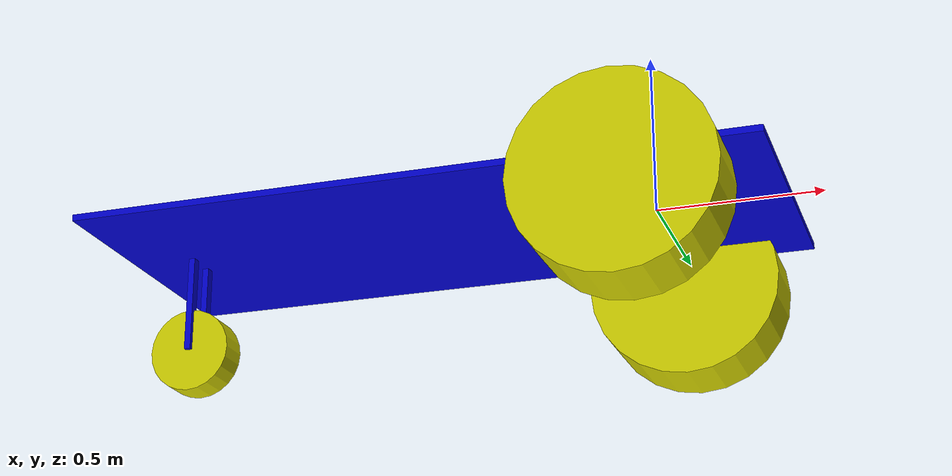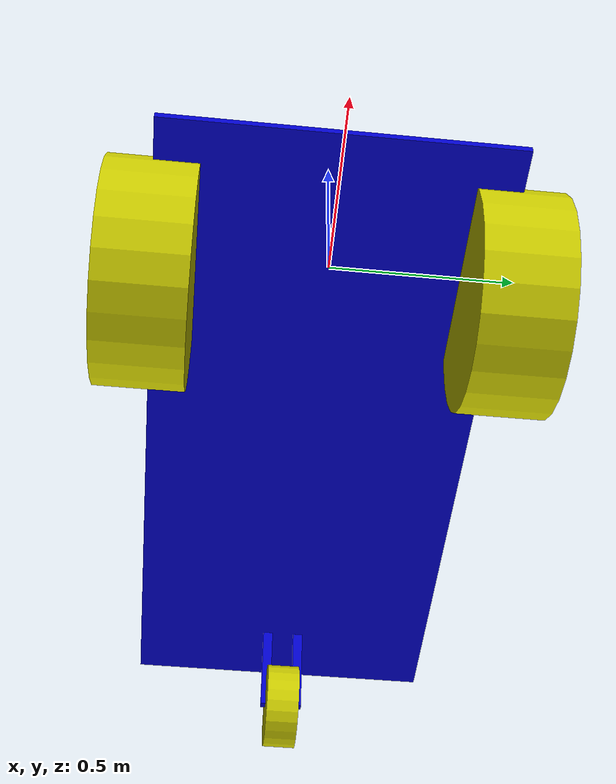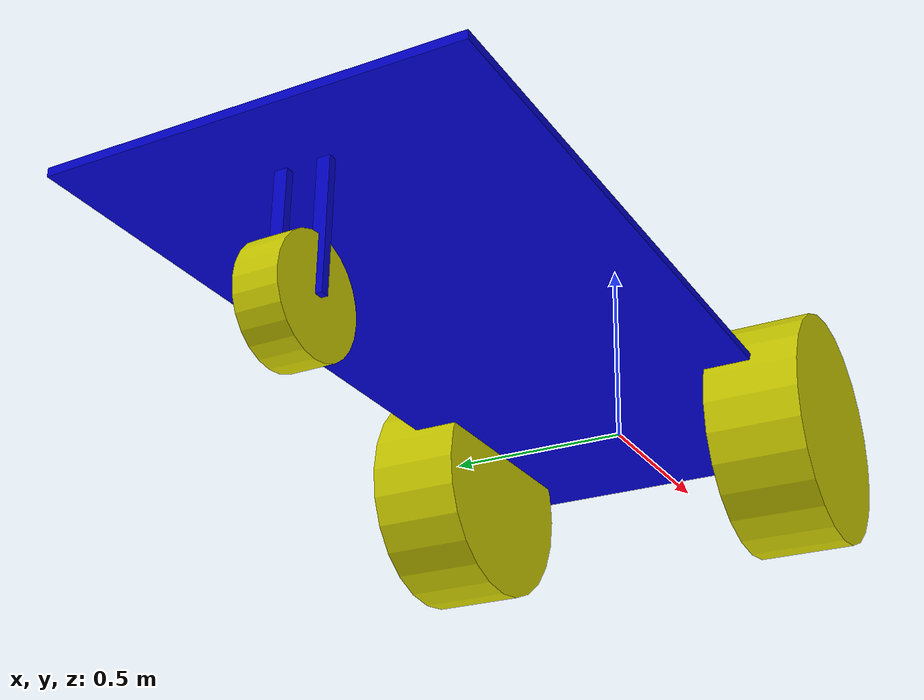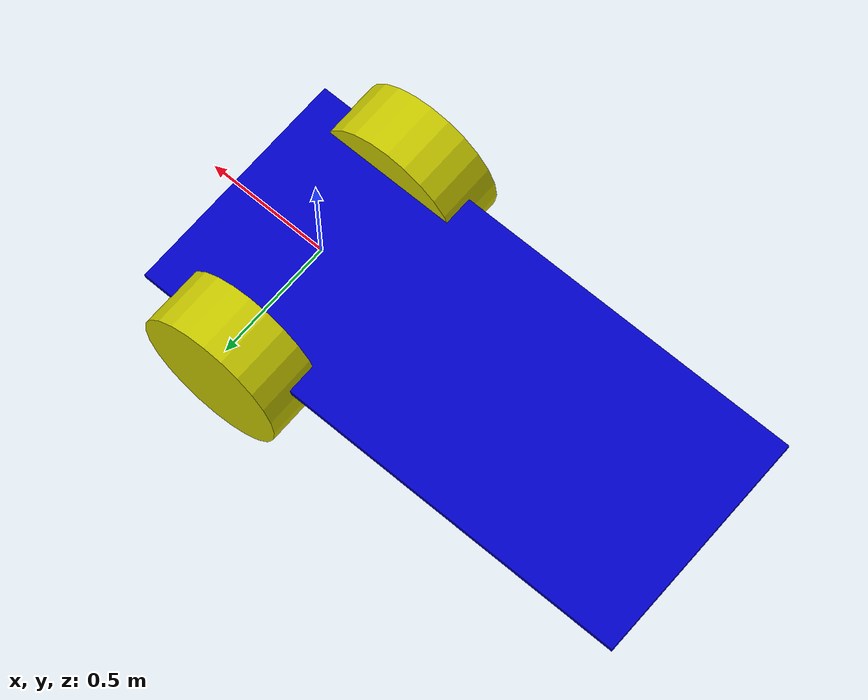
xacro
<?xml version="1.0"?>
<robot xmlns:xacro="http://www.ros.org/wiki/xacro"  name="batmobil">

    <xacro:arg name="use_ros2_control" default="true"/>
    <xacro:arg name="sim_mode" default="false"/>

    <xacro:include filename="core_model.xacro" />

    <xacro:if value="$(arg use_ros2_control)">
        <xacro:include filename="ros2_control.xacro" />
    </xacro:if>
    <xacro:unless value="$(arg use_ros2_control)">
        <xacro:include filename="gz_control.xacro" />
    </xacro:unless>

</robot>

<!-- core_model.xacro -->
<robot xmlns:xacro="http://www.ros.org/wiki/xacro" name="batmobil">

  <!-- Material Color -->
  <material name="blue">
    <color rgba="0 0 0.8 1"/>
  </material>

  <material name="yellow">
    <color rgba="0.8 0.8 0.0 1.0"/>
  </material>

  <material name="white">
    <color rgba="1 1 1 1"/>
  </material>

  <!-- Base Link -->
  <link name="base_link">
    <inertial>
      <origin xyz="0 0 0" rpy="0 0 0"/>
      <mass value="1.0"/>
      <inertia ixx="0.03" ixy="0.0" ixz="0.0" iyy="0.03" iyz="0.0" izz="0.03"/>
    </inertial>
  </link>

  <!-- Chassis link-->
  <link name="chassis">
    <visual>
      <origin xyz="0.35 0 0.01"/>
      <geometry>
        <box size="2.1 0.95 0.02"/>
      </geometry>
      <material name="blue"/>
    </visual>
    <collision>
      <origin xyz="0.35 0 0.01"/>
      <geometry>
        <box size="2.1 0.95 0.02"/>
      </geometry>
    </collision>
    <inertial>
      <origin xyz="0.35 0 0.01"/>
      <mass value="10.0"/>
      <inertia ixx="1.0" ixy="0.0" ixz="0.0" iyy="1.0" iyz="0.0" izz="1.0"/>
    </inertial>
  </link>

  <!-- Joint chassis-->
  <joint name="chassis_joint" type="fixed">
    <parent link="base_link"/>
    <child link="chassis"/>
    <origin xyz="-1 0 0"/>
  </joint>

  <!-- Right Wheel Link -->
  <link name="right_wheel">
    <visual>
      <geometry>
        <cylinder length="0.24" radius="0.3"/>
      </geometry>
      <material name="yellow"/>
    </visual>
    <collision>
      <geometry>
        <cylinder length="0.24" radius="0.3"/>
      </geometry>
    </collision>
    <inertial>
      <origin xyz="0 0 0"/>
      <mass value="1.0"/>
      <inertia ixx="0.02" ixy="0.0" ixz="0.0" iyy="0.02" iyz="0.0" izz="0.02"/>
    </inertial>
  </link>

  <!-- Joint between base_link and right wheel -->
  <joint name="base_to_right_wheel" type="continuous">
    <parent link="base_link"/>
    <child link="right_wheel"/>
    <origin xyz="0 -0.475 -0.1" rpy="1.5708 0 0"/>
    <axis xyz="0 0 -1"/>
    <dynamics damping="0.1" friction="0.1"/>
  </joint>

  <!-- Left Wheel Link -->
  <link name="left_wheel">
    <visual>
      <geometry>
        <cylinder length="0.24" radius="0.3"/>
      </geometry>
      <material name="yellow"/>
    </visual>
    <collision>
      <geometry>
        <cylinder length="0.24" radius="0.3"/>
      </geometry>
    </collision>
    <inertial>
      <origin xyz="0 0 0"/>
      <mass value="1.0"/>
      <inertia ixx="0.02" ixy="0.0" ixz="0.0" iyy="0.02" iyz="0.0" izz="0.02"/>
    </inertial>
  </link>

  <!-- Joint between base_link and left wheel -->
  <joint name="base_to_left_wheel" type="continuous">
    <parent link="base_link"/>
    <child link="left_wheel"/>
    <origin xyz="0 0.475 -0.1" rpy="-1.5708 0 0"/>
    <axis xyz="0 0 1"/>
    <dynamics damping="0.1" friction="0.1"/>
  </joint>

  <!-- Arm links -->
  <!-- link front wheel arm left -->
  <link name="wheel_arm_left">
    <visual>
      <geometry>
        <box size="0.02 0.03 0.3"/>
      </geometry>
      <material name="blue"/>
    </visual>
    <collision>
      <geometry>
        <box size="0.02 0.03 0.3"/>
      </geometry>
    </collision>
    <inertial>
      <origin xyz="0 0 0"/>
      <mass value="0.5"/>
      <inertia ixx="0.01" ixy="0.0" ixz="0.0" iyy="0.01" iyz="0.0" izz="0.01"/>
    </inertial>
  </link>

  <!-- Joint between base_link and front wheel arm left -->
  <joint name="base_to_wheel_arm_left" type="fixed">
    <parent link="base_link"/>
    <child link="wheel_arm_left"/>
    <origin xyz="-1.5 -0.05 -0.15"/>
  </joint>

  <!-- link front wheel arm right -->
  <link name="wheel_arm_right">
    <visual>
      <geometry>
        <box size="0.02 0.03 0.3"/>
      </geometry>
      <material name="blue"/>
    </visual>
    <collision>
      <geometry>
        <box size="0.02 0.03 0.3"/>
      </geometry>
    </collision>
    <inertial>
      <origin xyz="0 0 0"/>
      <mass value="0.5"/>
      <inertia ixx="0.01" ixy="0.0" ixz="0.0" iyy="0.01" iyz="0.0" izz="0.01"/>
    </inertial>
  </link>

  <!-- Joint between base_link and front wheel arm right -->
  <joint name="base_to_wheel_arm_right" type="fixed">
    <parent link="base_link"/>
    <child link="wheel_arm_right"/>
    <origin xyz="-1.5 0.05 -0.15"/>
  </joint>

  <!-- front wheel -->
  <link name="front_wheel">
    <visual>
      <geometry>
        <cylinder length="0.1" radius="0.13"/>
      </geometry>
      <material name="yellow"/>
    </visual>
    <collision>
      <geometry>
        <cylinder length="0.1" radius="0.13"/>
      </geometry>
    </collision>
    <inertial>
      <origin xyz="0 0 0"/>
      <mass value="0.8"/>
      <inertia ixx="0.02" ixy="0.0" ixz="0.0" iyy="0.02" iyz="0.0" izz="0.02"/>
    </inertial>
  </link>

  <!-- Joint between base_link and front wheel -->
  <joint name="arm_to_front_wheel" type="continuous">
    <parent link="wheel_arm_left"/>
    <child link="front_wheel"/>
    <origin xyz="0 0.05 -0.15" rpy="-1.5708 0 0"/>
    <axis xyz="0 0 1"/>
    <dynamics damping="0.1" friction="0.1"/>
  </joint>

</robot>
